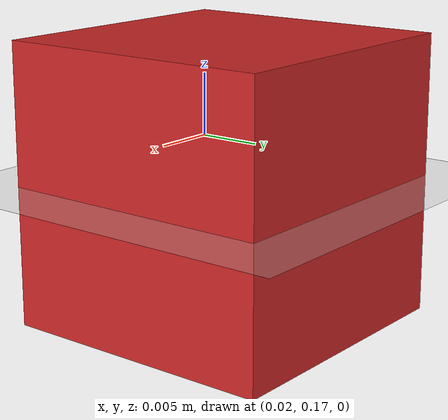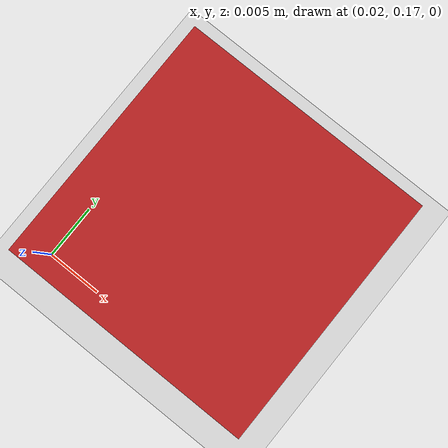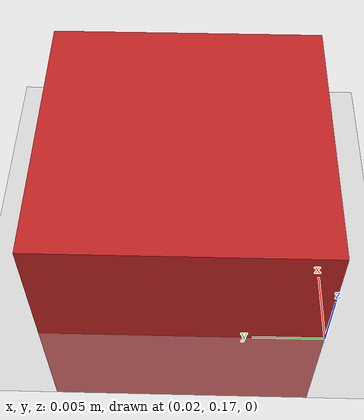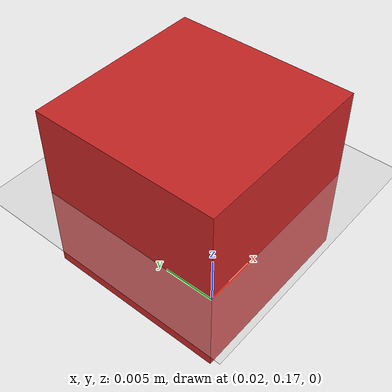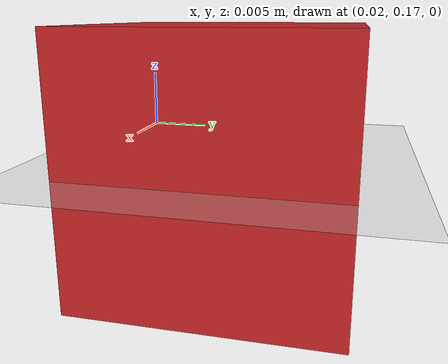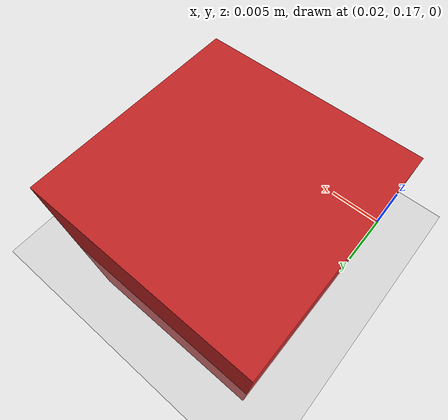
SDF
<sdf version="1.6">
 <world name="default">
  <light name="sun" type="directional">
   <pose>0 0 10 0 -0 0</pose>
   <diffuse>0.8 0.8 0.8 1</diffuse>
   <specular>0.2 0.2 0.2 1</specular>
   <attenuation>
    <range>1000</range>
    <constant>0.9</constant>
    <linear>0.01</linear>
    <quadratic>0.001</quadratic>
   </attenuation>
   <direction>-0.5 0.1 -0.9</direction>
  </light>
  <model name="ground_plane">
   <static>1</static>
   <link name="link">
    <collision name="collision">
     <geometry><plane><normal>0 0 1</normal><size>100 100</size></plane></geometry>
     <surface>
      <contact><collide_bitmask>65535</collide_bitmask></contact>
      <friction><ode><mu>100</mu><mu2>50</mu2></ode></friction>
     </surface>
    </collision>
    <visual name="visual">
     <cast_shadows>0</cast_shadows>
     <geometry><plane><normal>0 0 1</normal><size>100 100</size></plane></geometry>
     <material>
      <script><uri>file://media/materials/scripts/gazebo.material</uri><name>Gazebo/Grey</name></script>
     </material>
    </visual>
   </link>
  </model>
  <gravity>0 0 -9.8</gravity>
  <magnetic_field>6e-06 2.3e-05 -4.2e-05</magnetic_field>
  <atmosphere type="adiabatic"/>
  <physics name="default_physics" default="0" type="ode">
   <max_step_size>0.001</max_step_size>
   <real_time_factor>1</real_time_factor>
   <real_time_update_rate>1000</real_time_update_rate>
  </physics>
  <scene><ambient>0.8 0.8 0.8 1</ambient><background>0.7 0.7 0.7 1</background><shadows>1</shadows></scene>
  <audio><device>default</device></audio>
  <spherical_coordinates>
   <surface_model>EARTH_WGS84</surface_model>
   <latitude_deg>0</latitude_deg>
   <longitude_deg>0</longitude_deg>
   <elevation>0</elevation>
   <heading_deg>0</heading_deg>
  </spherical_coordinates>
  <model name="red_box">
   <link name="my_red_box">
    <inertial>
     <mass>0.05</mass>
     <inertia>
      <ixx>3.3333e-06</ixx>
      <ixy>0</ixy>
      <ixz>0</ixz>
      <iyy>3.3333e-06</iyy>
      <iyz>0</iyz>
      <izz>3.3333e-06</izz>
     </inertia>
    </inertial>
    <collision name="my_red_box_collision">
     <geometry><box><size>0.02 0.02 0.02</size></box></geometry>
     <surface><friction><ode><mu>0.8</mu><mu2>0.8</mu2></ode></friction></surface>
    </collision>
    <visual name="my_red_box_visual">
     <geometry><box><size>0.02 0.02 0.02</size></box></geometry>
     <material>
      <script><name>Gazebo/Red</name><uri>file://media/materials/scripts/gazebo.material</uri></script>
     </material>
    </visual>
   </link>
   <pose>0.03 0.18 0.0 0.0 0.0 0.0</pose>
  </model>
 </world>
</sdf>
